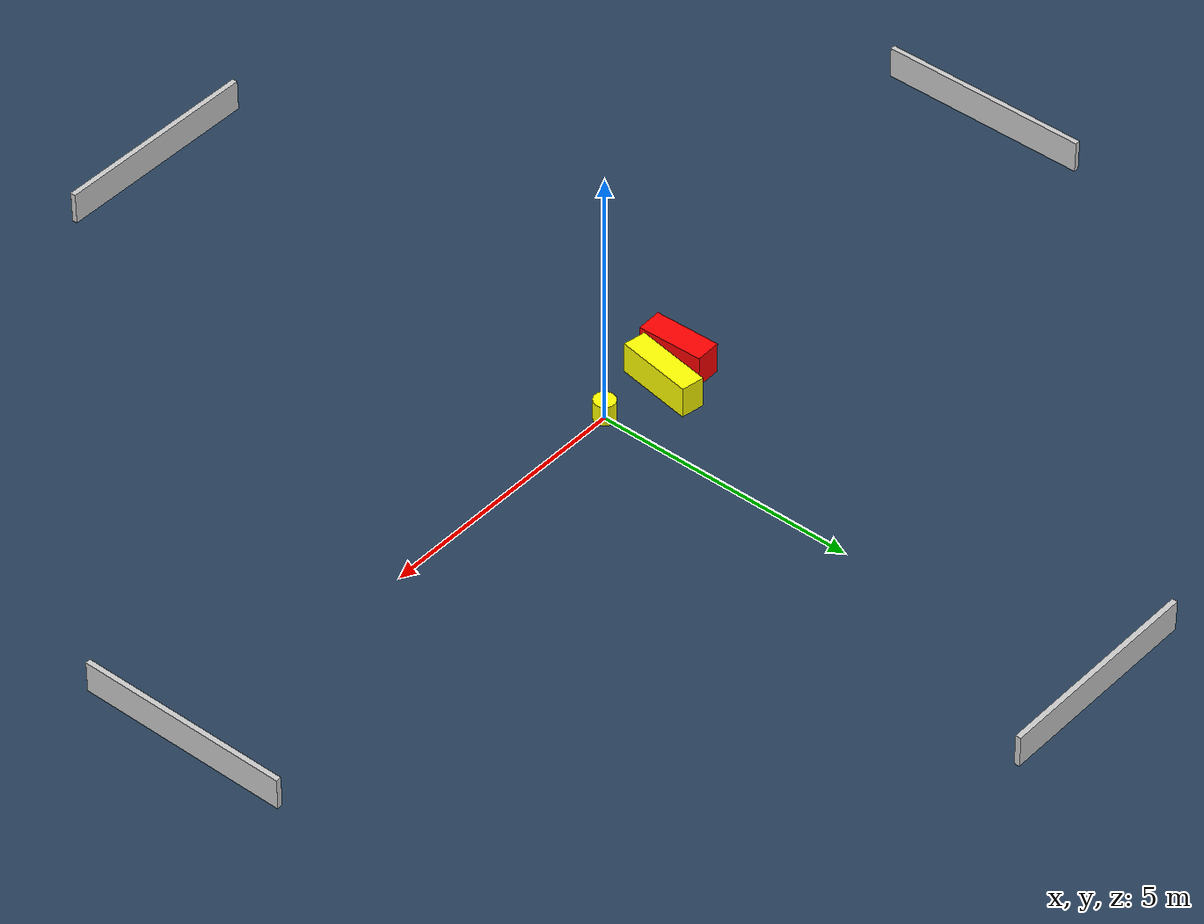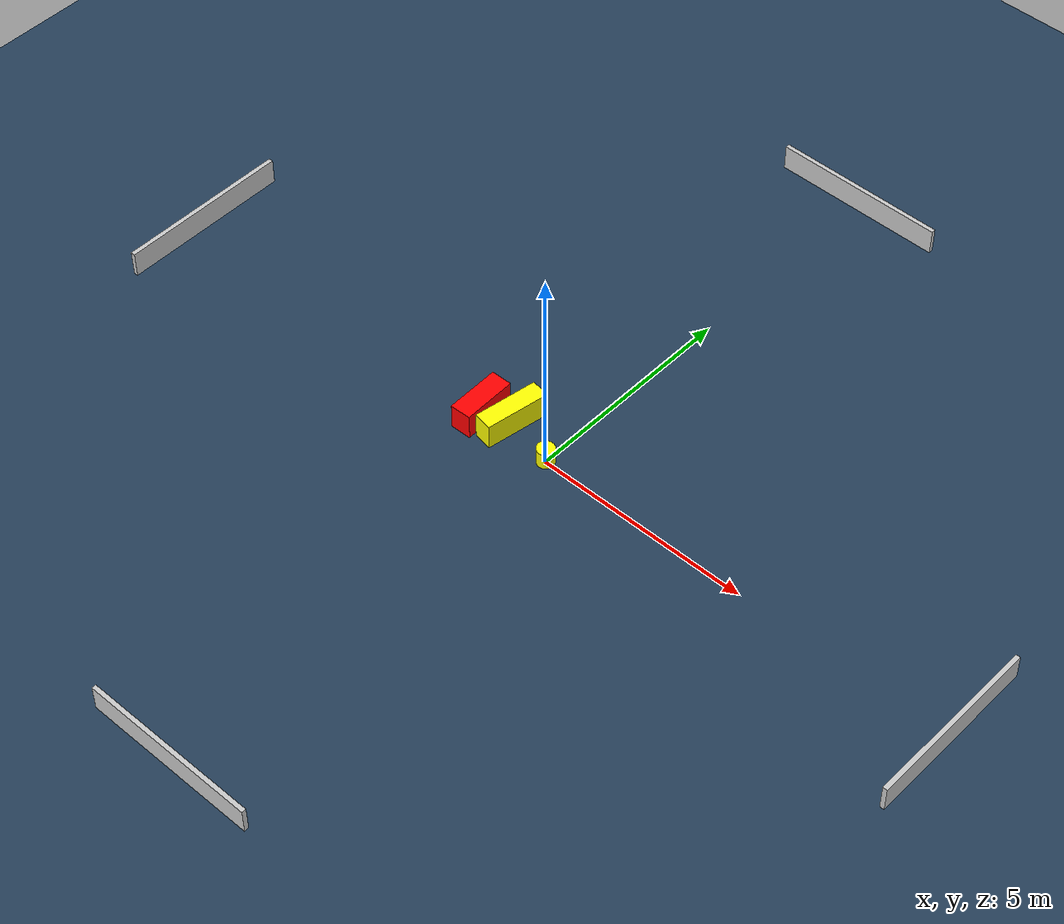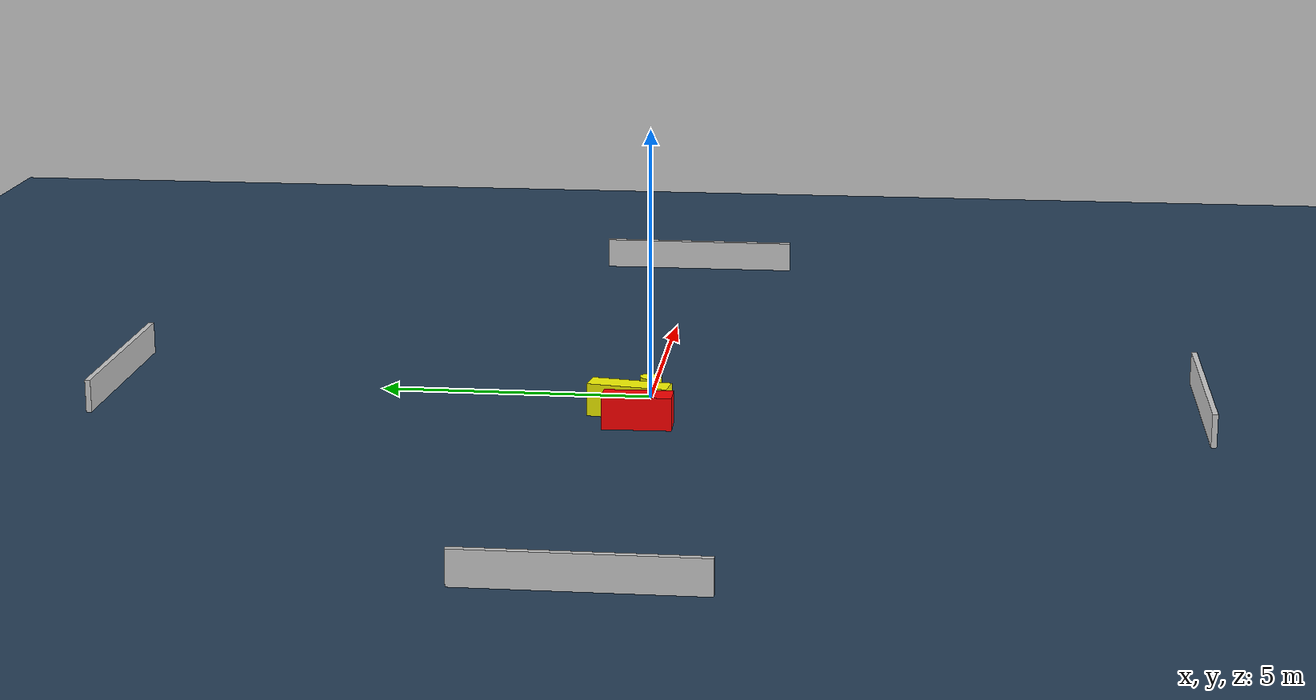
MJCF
<?xml version="1.0" ?>
<mujoco model="generated_environment">
  <option timestep="0.01" integrator="RK4" cone="elliptic"/>
  <default>
    <geom density="1"/>
  </default>
  <asset>
    <texture builtin="gradient" height="3072" name="skybox" rgb1="0.3 0.5 0.7" rgb2="0 0 0" type="skybox" width="512"/>
    <texture builtin="checker" height="300" name="groundplane" rgb1="0.2 0.3 0.4" rgb2="0.1 0.2 0.3" type="2d" width="300"/>
    <material name="groundplane" reflectance="0.2" texrepeat="5 5" texture="groundplane"/>
  </asset>
  <worldbody>
    <light dir="0 0 -1" directional="true" pos="0 0 1.5"/>
    <geom condim="3" friction="0.5 0.005 0.001" material="groundplane" name="floor" pos="0 0 0" size="0 0 0.05" type="plane"/>
    <body name="walls">
      <geom name="wall_1" condim="4" pos="-10.0 0.0 0.3" rgba="0.800000011920929 0.800000011920929 0.800000011920929 1.0" size="0.05 2.0 0.3" type="box"/>
      <geom name="wall_2" condim="4" pos="10.0 0.0 0.3" rgba="0.800000011920929 0.800000011920929 0.800000011920929 1.0" size="0.05 2.0 0.3" type="box"/>
      <geom name="wall_3" condim="4" pos="0.0 -10.0 0.3" rgba="0.800000011920929 0.800000011920929 0.800000011920929 1.0" size="2.0 0.05 0.3" type="box"/>
      <geom name="wall_4" condim="4" pos="0.0 10.0 0.3" rgba="0.800000011920929 0.800000011920929 0.800000011920929 1.0" size="2.0 0.05 0.3" type="box"/>
    </body>
    <body name="robot">
      <joint name="joint_x" type="slide" pos="0 0 0" axis="1 0 0"/>
      <joint name="joint_y" type="slide" pos="0 0 0" axis="0 1 0"/>
      <geom name="robot" type="cylinder" pos="0.0 0.0 0.2" size="0.2 0.2 0.0" mass="5.0" friction="1.0 0.005 0.0001" condim="4" rgba="1.0 1.0 0.0 1.0"/>
    </body>
    <body name="obstacle_1_movable">
      <geom name="obstacle_1_movable" condim="4" pos="-1.1712266265271896 0.26010764392587954 0.3" euler="0 0 170.43211674014705" friction="0.0 0.005 0.001" rgba="1.0 1.0 0.0 1.0" size="0.21685513384835645 0.7357181246832265 0.3" type="box" mass="0.1"/>
      <joint type="free"/>
    </body>
    <body name="obstacle_2_static">
      <geom name="obstacle_2_static" condim="4" pos="-1.8092783597502062 0.04540206086694931 0.3" euler="0 0 1.3623742883257428" friction="0.0 0.005 0.001" rgba="1.0 0.0 0.0 1.0" size="0.24076777879236788 0.6213122278070994 0.3" type="box"/>
    </body>
  </worldbody>
  <actuator>
    <motor name="actuator_x" joint="joint_x" gear="1" ctrlrange="-1 1"/>
    <motor name="actuator_y" joint="joint_y" gear="1" ctrlrange="-1 1"/>
  </actuator>
</mujoco>
